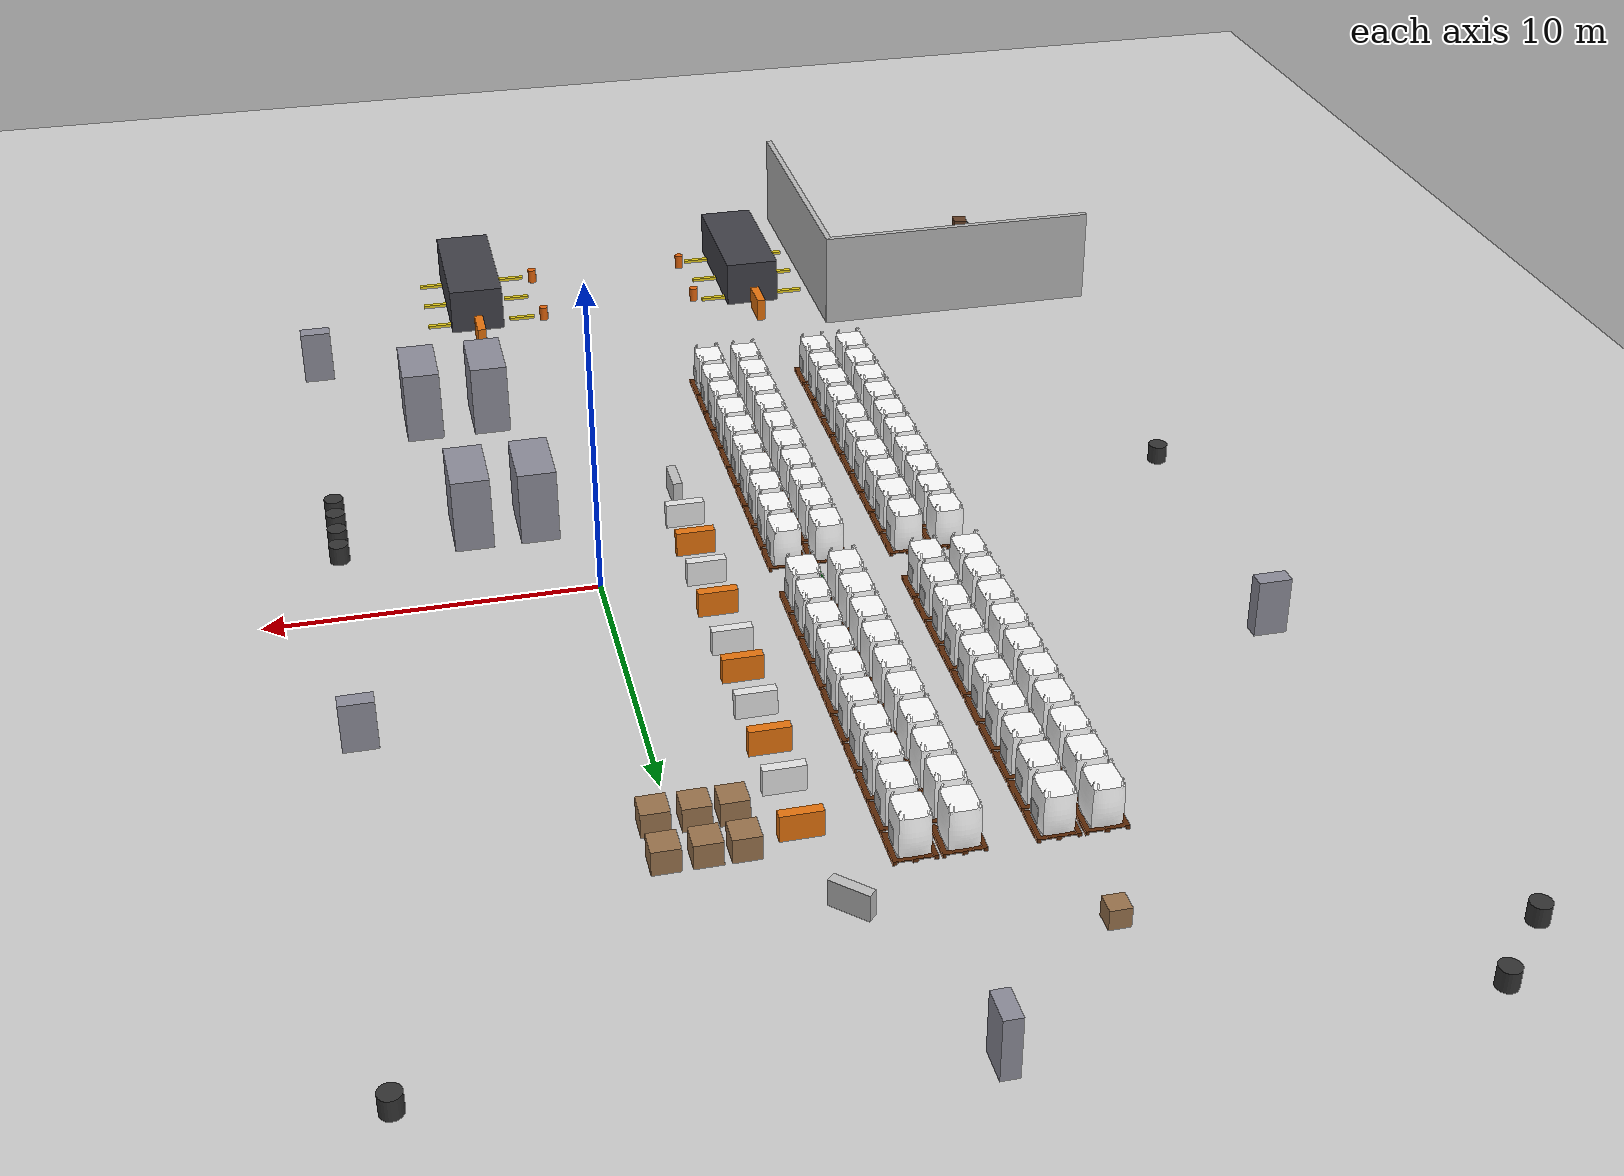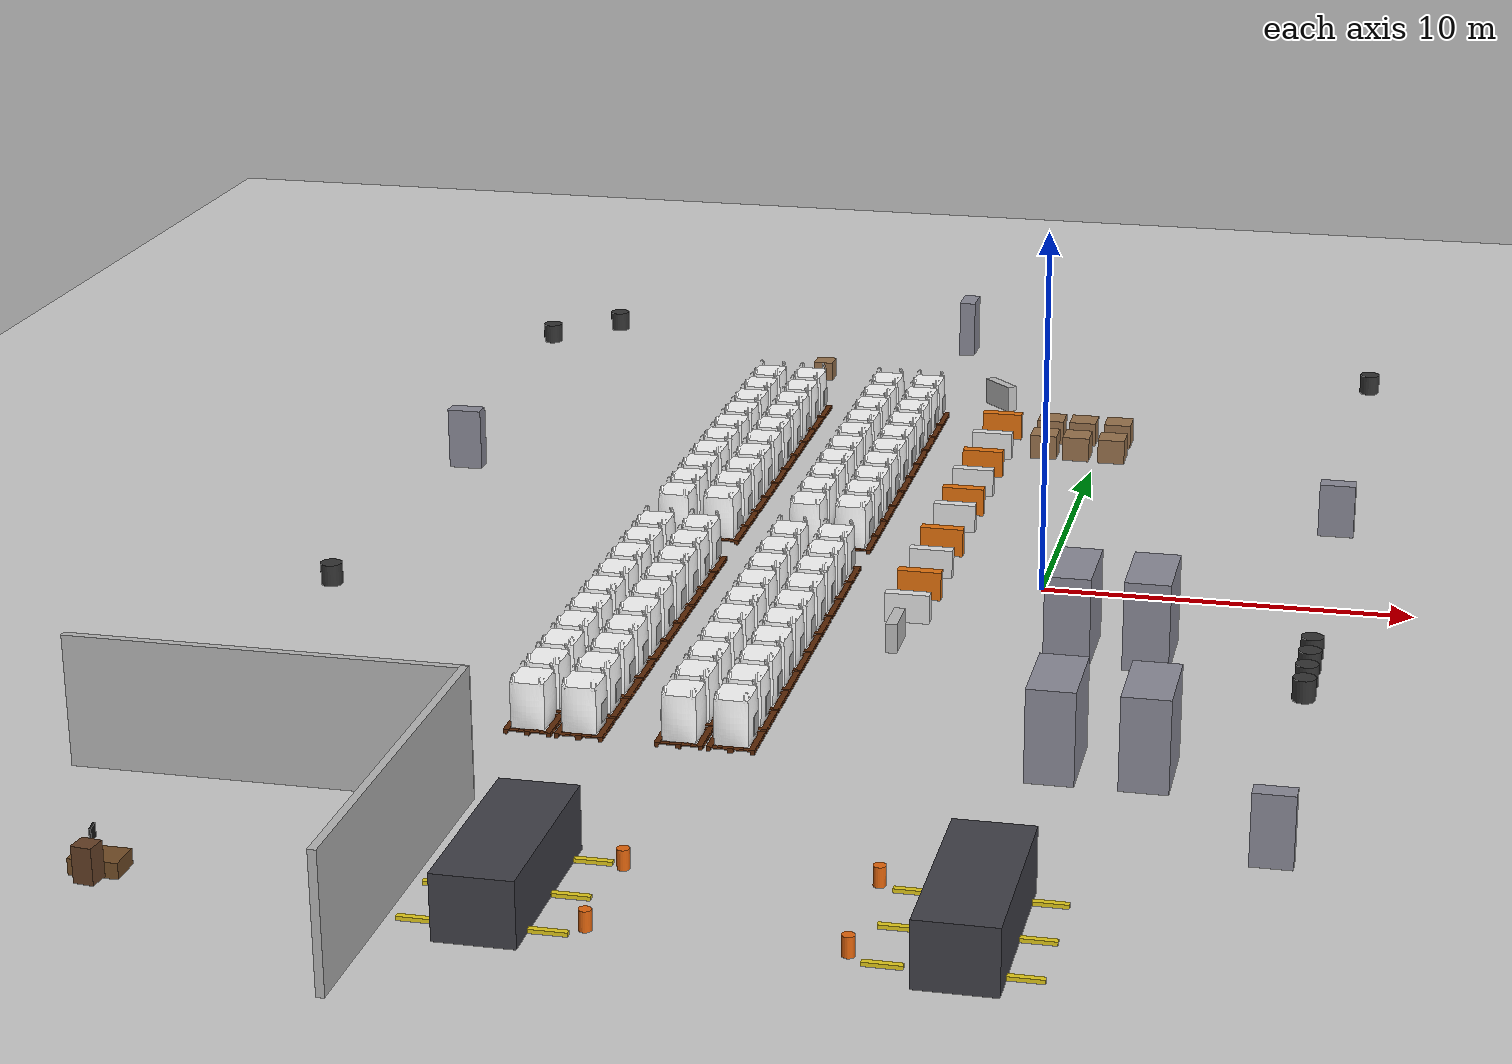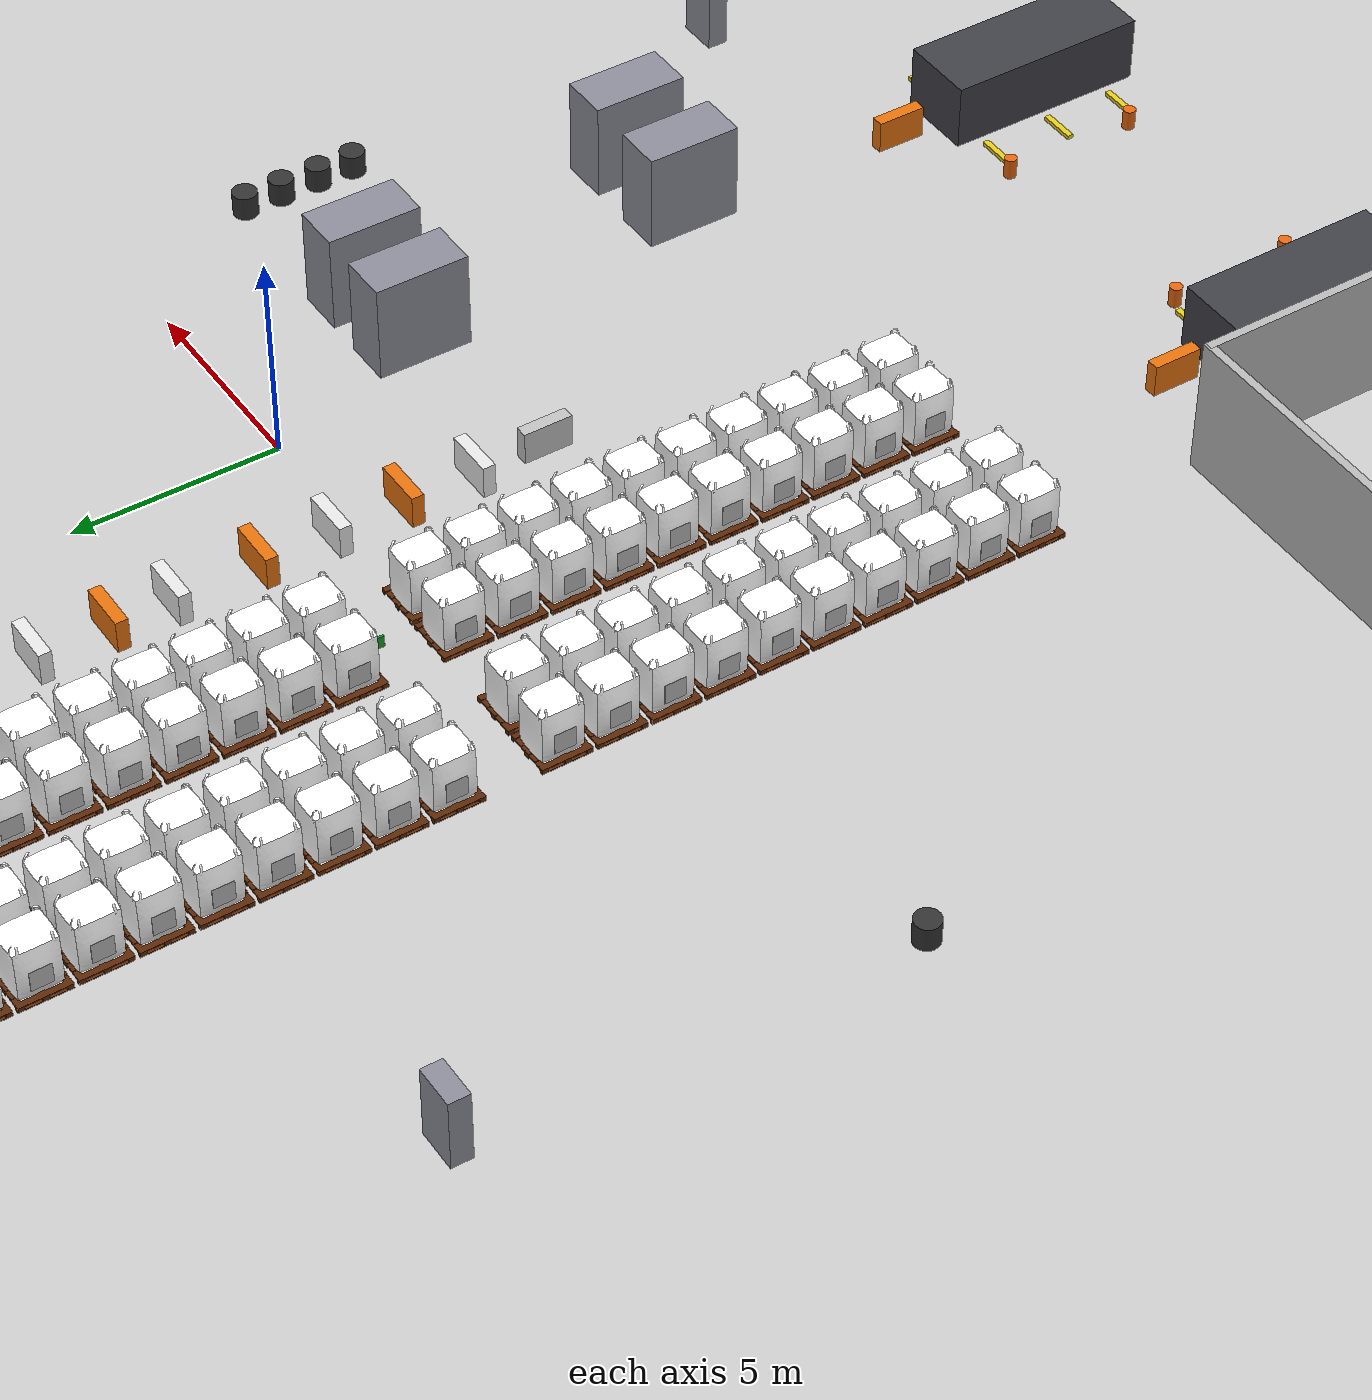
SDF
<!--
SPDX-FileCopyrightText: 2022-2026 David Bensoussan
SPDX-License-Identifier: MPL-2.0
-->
<sdf version="1.6">
 <world name="warehouse">
  <physics name="1ms" type="ignored">
   <max_step_size>0.001</max_step_size>
   <real_time_factor>1.0</real_time_factor>
  </physics>
  <plugin filename="gz-sim-physics-system" name="gz::sim::systems::Physics"/>
  <plugin filename="gz-sim-sensors-system" name="gz::sim::systems::Sensors">
   <render_engine>ogre2</render_engine>
  </plugin>
  <plugin filename="gz-sim-imu-system" name="gz::sim::systems::Imu"/>
  <plugin filename="gz-sim-user-commands-system" name="gz::sim::systems::UserCommands"/>
  <plugin filename="gz-sim-scene-broadcaster-system" name="gz::sim::systems::SceneBroadcaster"/>
  <plugin filename="gz-sim-contact-system" name="gz::sim::systems::Contact"/>
  <model name="ground_plane">
   <static>true</static>
   <link name="link">
    <collision name="collision">
     <geometry><plane><normal>0 0 1</normal><size>100 100</size></plane></geometry>
    </collision>
    <visual name="visual">
     <geometry><plane><normal>0 0 1</normal><size>100 100</size></plane></geometry>
     <material>
      <ambient>0.8 0.8 0.8 1</ambient>
      <diffuse>0.8 0.8 0.8 1</diffuse>
      <specular>0.8 0.8 0.8 1</specular>
     </material>
    </visual>
   </link>
  </model>
  <light type="directional" name="sun">
   <pose>0 0 10 0 0 0</pose>
   <diffuse>1 1 1 1</diffuse>
   <specular>0.5 0.5 0.5 1</specular>
   <attenuation>
    <range>1000</range>
    <constant>0.9</constant>
    <linear>0.01</linear>
    <quadratic>0.001</quadratic>
   </attenuation>
   <direction>-0.5 0.1 -0.9</direction>
  </light>
  <scene><ambient>0.4 0.4 0.4 1</ambient><background>0.7 0.7 0.7 1</background><shadows>false</shadows></scene>
  <model name="charging_dock">
   <pose>-6.5 1.37 0 0 0 0</pose>
   <include><uri>model://charging_dock</uri></include>
  </model>
  <model name="europallet_bag_1_1">
   <static>1</static>
   <pose>-9.5 -0.2 0 0 0 0</pose>
   <include><uri>model://europallet</uri></include>
   <include><uri>model://bag</uri></include>
  </model>
  <model name="europallet_bag_q_1_1">
   <static>1</static>
   <pose>-8.998293 -0.2 0.328453 0 0 0</pose>
   <include><uri>model://qrcode_0001</uri></include>
  </model>
  <model name="europallet_bag_1_2">
   <static>1</static>
   <pose>-9.5 -1.5 0 0 0 0</pose>
   <include><uri>model://europallet</uri></include>
   <include><uri>model://bag</uri></include>
  </model>
  <model name="europallet_bag_q_1_2">
   <static>1</static>
   <pose>-8.998293 -1.5 0.328453 0 0 0</pose>
   <include><uri>model://qrcode_0001</uri></include>
  </model>
  <model name="europallet_bag_1_3">
   <static>1</static>
   <pose>-9.5 -2.8 0 0 0 0</pose>
   <include><uri>model://europallet</uri></include>
   <include><uri>model://bag</uri></include>
  </model>
  <model name="europallet_bag_q_1_3">
   <static>1</static>
   <pose>-8.998293 -2.8 0.328453 0 0 0</pose>
   <include><uri>model://qrcode_0001</uri></include>
  </model>
  <model name="europallet_bag_1_4">
   <static>1</static>
   <pose>-9.5 -4.1 0 0 0 0</pose>
   <include><uri>model://europallet</uri></include>
   <include><uri>model://bag</uri></include>
  </model>
  <model name="europallet_bag_q_1_4">
   <static>1</static>
   <pose>-8.998293 -4.1 0.328453 0 0 0</pose>
   <include><uri>model://qrcode_0001</uri></include>
  </model>
  <model name="europallet_bag_1_5">
   <static>1</static>
   <pose>-9.5 -5.4 0 0 0 0</pose>
   <include><uri>model://europallet</uri></include>
   <include><uri>model://bag</uri></include>
  </model>
  <model name="europallet_bag_q_1_5">
   <static>1</static>
   <pose>-8.998293 -5.4 0.328453 0 0 0</pose>
   <include><uri>model://qrcode_0001</uri></include>
  </model>
  <model name="europallet_bag_1_6">
   <static>1</static>
   <pose>-9.5 -6.7 0 0 0 0</pose>
   <include><uri>model://europallet</uri></include>
   <include><uri>model://bag</uri></include>
  </model>
  <model name="europallet_bag_q_1_6">
   <static>1</static>
   <pose>-8.998293 -6.7 0.328453 0 0 0</pose>
   <include><uri>model://qrcode_0001</uri></include>
  </model>
  <model name="europallet_bag_1_7">
   <static>1</static>
   <pose>-9.5 -8 0 0 0 0</pose>
   <include><uri>model://europallet</uri></include>
   <include><uri>model://bag</uri></include>
  </model>
  <model name="europallet_bag_q_1_7">
   <static>1</static>
   <pose>-8.998293 -8 0.328453 0 0 0</pose>
   <include><uri>model://qrcode_0001</uri></include>
  </model>
  <model name="europallet_bag_1_8">
   <static>1</static>
   <pose>-9.5 -9.3 0 0 0 0</pose>
   <include><uri>model://europallet</uri></include>
   <include><uri>model://bag</uri></include>
  </model>
  <model name="europallet_bag_q_1_8">
   <static>1</static>
   <pose>-8.998293 -9.3 0.328453 0 0 0</pose>
   <include><uri>model://qrcode_0001</uri></include>
  </model>
  <model name="europallet_bag_1_9">
   <static>1</static>
   <pose>-9.5 -10.6 0 0 0 0</pose>
   <include><uri>model://europallet</uri></include>
   <include><uri>model://bag</uri></include>
  </model>
  <model name="europallet_bag_q_1_9">
   <static>1</static>
   <pose>-8.998293 -10.6 0.328453 0 0 0</pose>
   <include><uri>model://qrcode_0001</uri></include>
  </model>
  <model name="europallet_bag_1_10">
   <static>1</static>
   <pose>-9.5 -11.9 0 0 0 0</pose>
   <include><uri>model://europallet</uri></include>
   <include><uri>model://bag</uri></include>
  </model>
  <model name="europallet_bag_q_1_10">
   <static>1</static>
   <pose>-8.998293 -11.9 0.328453 0 0 0</pose>
   <include><uri>model://qrcode_0001</uri></include>
  </model>
  <model name="europallet_bag_2_1">
   <static>1</static>
   <pose>-10.8 -0.2 0 0 0 0</pose>
   <include><uri>model://europallet</uri></include>
   <include><uri>model://bag</uri></include>
  </model>
  <model name="europallet_bag_q_2_1">
   <static>1</static>
   <pose>-11.307849 -0.2 0.328453 0 0 3.141593</pose>
   <include><uri>model://qrcode_0002</uri></include>
  </model>
  <model name="europallet_bag_2_2">
   <static>1</static>
   <pose>-10.8 -1.5 0 0 0 0</pose>
   <include><uri>model://europallet</uri></include>
   <include><uri>model://bag</uri></include>
  </model>
  <model name="europallet_bag_q_2_2">
   <static>1</static>
   <pose>-11.307849 -1.5 0.328453 0 0 3.141593</pose>
   <include><uri>model://qrcode_0002</uri></include>
  </model>
  <model name="europallet_bag_2_3">
   <static>1</static>
   <pose>-10.8 -2.8 0 0 0 0</pose>
   <include><uri>model://europallet</uri></include>
   <include><uri>model://bag</uri></include>
  </model>
  <model name="europallet_bag_q_2_3">
   <static>1</static>
   <pose>-11.307849 -2.8 0.328453 0 0 3.141593</pose>
   <include><uri>model://qrcode_0002</uri></include>
  </model>
  <model name="europallet_bag_2_4">
   <static>1</static>
   <pose>-10.8 -4.1 0 0 0 0</pose>
   <include><uri>model://europallet</uri></include>
   <include><uri>model://bag</uri></include>
  </model>
  <model name="europallet_bag_q_2_4">
   <static>1</static>
   <pose>-11.307849 -4.1 0.328453 0 0 3.141593</pose>
   <include><uri>model://qrcode_0002</uri></include>
  </model>
  <model name="europallet_bag_2_5">
   <static>1</static>
   <pose>-10.8 -5.4 0 0 0 0</pose>
   <include><uri>model://europallet</uri></include>
   <include><uri>model://bag</uri></include>
  </model>
  <model name="europallet_bag_q_2_5">
   <static>1</static>
   <pose>-11.307849 -5.4 0.328453 0 0 3.141593</pose>
   <include><uri>model://qrcode_0002</uri></include>
  </model>
  <model name="europallet_bag_2_6">
   <static>1</static>
   <pose>-10.8 -6.7 0 0 0 0</pose>
   <include><uri>model://europallet</uri></include>
   <include><uri>model://bag</uri></include>
  </model>
  <model name="europallet_bag_q_2_6">
   <static>1</static>
   <pose>-11.307849 -6.7 0.328453 0 0 3.141593</pose>
   <include><uri>model://qrcode_0002</uri></include>
  </model>
  <model name="europallet_bag_2_7">
   <static>1</static>
   <pose>-10.8 -8 0 0 0 0</pose>
   <include><uri>model://europallet</uri></include>
   <include><uri>model://bag</uri></include>
  </model>
  <model name="europallet_bag_q_2_7">
   <static>1</static>
   <pose>-11.307849 -8 0.328453 0 0 3.141593</pose>
   <include><uri>model://qrcode_0002</uri></include>
  </model>
  <model name="europallet_bag_2_8">
   <static>1</static>
   <pose>-10.8 -9.3 0 0 0 0</pose>
   <include><uri>model://europallet</uri></include>
   <include><uri>model://bag</uri></include>
  </model>
  <model name="europallet_bag_q_2_8">
   <static>1</static>
   <pose>-11.307849 -9.3 0.328453 0 0 3.141593</pose>
   <include><uri>model://qrcode_0002</uri></include>
  </model>
  <model name="europallet_bag_2_9">
   <static>1</static>
   <pose>-10.8 -10.6 0 0 0 0</pose>
   <include><uri>model://europallet</uri></include>
   <include><uri>model://bag</uri></include>
  </model>
  <model name="europallet_bag_q_2_9">
   <static>1</static>
   <pose>-11.307849 -10.6 0.328453 0 0 3.141593</pose>
   <include><uri>model://qrcode_0002</uri></include>
  </model>
  <model name="europallet_bag_2_10">
   <static>1</static>
   <pose>-10.8 -11.9 0 0 0 0</pose>
   <include><uri>model://europallet</uri></include>
   <include><uri>model://bag</uri></include>
  </model>
  <model name="europallet_bag_q_2_10">
   <static>1</static>
   <pose>-11.307849 -11.9 0.328453 0 0 3.141593</pose>
   <include><uri>model://qrcode_0002</uri></include>
  </model>
  <model name="europallet_bag_3_1">
   <static>1</static>
   <pose>-9.5 2.3 0 0 0 0</pose>
   <include><uri>model://europallet</uri></include>
   <include><uri>model://bag</uri></include>
  </model>
  <model name="europallet_bag_q_3_1">
   <static>1</static>
   <pose>-8.998293 2.3 0.328453 0 0 0</pose>
   <include><uri>model://qrcode_0003</uri></include>
  </model>
  <model name="europallet_bag_3_2">
   <static>1</static>
   <pose>-9.5 3.6 0 0 0 0</pose>
   <include><uri>model://europallet</uri></include>
   <include><uri>model://bag</uri></include>
  </model>
  <model name="europallet_bag_q_3_2">
   <static>1</static>
   <pose>-8.998293 3.6 0.328453 0 0 0</pose>
   <include><uri>model://qrcode_0003</uri></include>
  </model>
  <model name="europallet_bag_3_3">
   <static>1</static>
   <pose>-9.5 4.9 0 0 0 0</pose>
   <include><uri>model://europallet</uri></include>
   <include><uri>model://bag</uri></include>
  </model>
  <model name="europallet_bag_q_3_3">
   <static>1</static>
   <pose>-8.998293 4.9 0.328453 0 0 0</pose>
   <include><uri>model://qrcode_0003</uri></include>
  </model>
  <model name="europallet_bag_3_4">
   <static>1</static>
   <pose>-9.5 6.2 0 0 0 0</pose>
   <include><uri>model://europallet</uri></include>
   <include><uri>model://bag</uri></include>
  </model>
  <model name="europallet_bag_q_3_4">
   <static>1</static>
   <pose>-8.998293 6.2 0.328453 0 0 0</pose>
   <include><uri>model://qrcode_0003</uri></include>
  </model>
  <model name="europallet_bag_3_5">
   <static>1</static>
   <pose>-9.5 7.5 0 0 0 0</pose>
   <include><uri>model://europallet</uri></include>
   <include><uri>model://bag</uri></include>
  </model>
  <model name="europallet_bag_q_3_5">
   <static>1</static>
   <pose>-8.998293 7.5 0.328453 0 0 0</pose>
   <include><uri>model://qrcode_0003</uri></include>
  </model>
  <model name="europallet_bag_3_6">
   <static>1</static>
   <pose>-9.5 8.8 0 0 0 0</pose>
   <include><uri>model://europallet</uri></include>
   <include><uri>model://bag</uri></include>
  </model>
  <model name="europallet_bag_q_3_6">
   <static>1</static>
   <pose>-8.998293 8.8 0.328453 0 0 0</pose>
   <include><uri>model://qrcode_0003</uri></include>
  </model>
  <model name="europallet_bag_3_7">
   <static>1</static>
   <pose>-9.5 10.1 0 0 0 0</pose>
   <include><uri>model://europallet</uri></include>
   <include><uri>model://bag</uri></include>
  </model>
  <model name="europallet_bag_q_3_7">
   <static>1</static>
   <pose>-8.998293 10.1 0.328453 0 0 0</pose>
   <include><uri>model://qrcode_0003</uri></include>
  </model>
  <model name="europallet_bag_3_8">
   <static>1</static>
   <pose>-9.5 11.4 0 0 0 0</pose>
   <include><uri>model://europallet</uri></include>
   <include><uri>model://bag</uri></include>
  </model>
  <model name="europallet_bag_q_3_8">
   <static>1</static>
   <pose>-8.998293 11.4 0.328453 0 0 0</pose>
   <include><uri>model://qrcode_0003</uri></include>
  </model>
  <model name="europallet_bag_3_9">
   <static>1</static>
   <pose>-9.5 12.7 0 0 0 0</pose>
   <include><uri>model://europallet</uri></include>
   <include><uri>model://bag</uri></include>
  </model>
  <model name="europallet_bag_q_3_9">
   <static>1</static>
   <pose>-8.998293 12.7 0.328453 0 0 0</pose>
   <include><uri>model://qrcode_0003</uri></include>
  </model>
  <model name="europallet_bag_3_10">
   <static>1</static>
   <pose>-9.5 14 0 0 0 0</pose>
   <include><uri>model://europallet</uri></include>
   <include><uri>model://bag</uri></include>
  </model>
  <model name="europallet_bag_q_3_10">
   <static>1</static>
   <pose>-8.998293 14 0.328453 0 0 0</pose>
   <include><uri>model://qrcode_0003</uri></include>
  </model>
  <model name="europallet_bag_4_1">
   <static>1</static>
   <pose>-10.8 2.3 0 0 0 0</pose>
   <include><uri>model://europallet</uri></include>
   <include><uri>model://bag</uri></include>
  </model>
  <model name="europallet_bag_q_4_1">
   <static>1</static>
   <pose>-11.307849 2.3 0.328453 0 0 3.141593</pose>
   <include><uri>model://qrcode_0004</uri></include>
  </model>
  <model name="europallet_bag_4_2">
   <static>1</static>
   <pose>-10.8 3.6 0 0 0 0</pose>
   <include><uri>model://europallet</uri></include>
   <include><uri>model://bag</uri></include>
  </model>
  <model name="europallet_bag_q_4_2">
   <static>1</static>
   <pose>-11.307849 3.6 0.328453 0 0 3.141593</pose>
   <include><uri>model://qrcode_0004</uri></include>
  </model>
  <model name="europallet_bag_4_3">
   <static>1</static>
   <pose>-10.8 4.9 0 0 0 0</pose>
   <include><uri>model://europallet</uri></include>
   <include><uri>model://bag</uri></include>
  </model>
  <model name="europallet_bag_q_4_3">
   <static>1</static>
   <pose>-11.307849 4.9 0.328453 0 0 3.141593</pose>
   <include><uri>model://qrcode_0004</uri></include>
  </model>
  <model name="europallet_bag_4_4">
   <static>1</static>
   <pose>-10.8 6.2 0 0 0 0</pose>
   <include><uri>model://europallet</uri></include>
   <include><uri>model://bag</uri></include>
  </model>
  <model name="europallet_bag_q_4_4">
   <static>1</static>
   <pose>-11.307849 6.2 0.328453 0 0 3.141593</pose>
   <include><uri>model://qrcode_0004</uri></include>
  </model>
  <model name="europallet_bag_4_5">
   <static>1</static>
   <pose>-10.8 7.5 0 0 0 0</pose>
   <include><uri>model://europallet</uri></include>
   <include><uri>model://bag</uri></include>
  </model>
  <model name="europallet_bag_q_4_5">
   <static>1</static>
   <pose>-11.307849 7.5 0.328453 0 0 3.141593</pose>
   <include><uri>model://qrcode_0004</uri></include>
  </model>
  <model name="europallet_bag_4_6">
   <static>1</static>
   <pose>-10.8 8.8 0 0 0 0</pose>
   <include><uri>model://europallet</uri></include>
   <include><uri>model://bag</uri></include>
  </model>
  <model name="europallet_bag_q_4_6">
   <static>1</static>
   <pose>-11.307849 8.8 0.328453 0 0 3.141593</pose>
   <include><uri>model://qrcode_0004</uri></include>
  </model>
  <model name="europallet_bag_4_7">
   <static>1</static>
   <pose>-10.8 10.1 0 0 0 0</pose>
   <include><uri>model://europallet</uri></include>
   <include><uri>model://bag</uri></include>
  </model>
  <model name="europallet_bag_q_4_7">
   <static>1</static>
   <pose>-11.307849 10.1 0.328453 0 0 3.141593</pose>
   <include><uri>model://qrcode_0004</uri></include>
  </model>
  <model name="europallet_bag_4_8">
   <static>1</static>
   <pose>-10.8 11.4 0 0 0 0</pose>
   <include><uri>model://europallet</uri></include>
   <include><uri>model://bag</uri></include>
  </model>
  <model name="europallet_bag_q_4_8">
   <static>1</static>
   <pose>-11.307849 11.4 0.328453 0 0 3.141593</pose>
   <include><uri>model://qrcode_0004</uri></include>
  </model>
  <model name="europallet_bag_4_9">
   <static>1</static>
   <pose>-10.8 12.7 0 0 0 0</pose>
   <include><uri>model://europallet</uri></include>
   <include><uri>model://bag</uri></include>
  </model>
  <model name="europallet_bag_q_4_9">
   <static>1</static>
   <pose>-11.307849 12.7 0.328453 0 0 3.141593</pose>
   <include><uri>model://qrcode_0004</uri></include>
  </model>
  <model name="europallet_bag_4_10">
   <static>1</static>
   <pose>-10.8 14 0 0 0 0</pose>
   <include><uri>model://europallet</uri></include>
   <include><uri>model://bag</uri></include>
  </model>
  <model name="europallet_bag_q_4_10">
   <static>1</static>
   <pose>-11.307849 14 0.328453 0 0 3.141593</pose>
   <include><uri>model://qrcode_0004</uri></include>
  </model>
  <model name="europallet_bag_5_1">
   <static>1</static>
   <pose>-7 -0.2 0 0 0 3.141593</pose>
   <include><uri>model://europallet</uri></include>
   <include><uri>model://bag</uri><pose>0 0 0 0 0 -3.141593</pose></include>
  </model>
  <model name="europallet_bag_q_5_1">
   <static>1</static>
   <pose>-7.503675 -0.2 0.328453 0 0 3.141593</pose>
   <include><uri>model://qrcode_0005</uri></include>
  </model>
  <model name="europallet_bag_5_2">
   <static>1</static>
   <pose>-7 -1.5 0 0 0 0</pose>
   <include><uri>model://europallet</uri></include>
   <include><uri>model://bag</uri></include>
  </model>
  <model name="europallet_bag_q_5_2">
   <static>1</static>
   <pose>-7.503675 -1.5 0.328453 0 0 3.141593</pose>
   <include><uri>model://qrcode_0005</uri></include>
  </model>
  <model name="europallet_bag_5_3">
   <static>1</static>
   <pose>-7 -2.8 0 0 0 0</pose>
   <include><uri>model://europallet</uri></include>
   <include><uri>model://bag</uri></include>
  </model>
  <model name="europallet_bag_q_5_3">
   <static>1</static>
   <pose>-7.503675 -2.8 0.328453 0 0 3.141593</pose>
   <include><uri>model://qrcode_0005</uri></include>
  </model>
  <model name="europallet_bag_5_4">
   <static>1</static>
   <pose>-7 -4.1 0 0 0 0</pose>
   <include><uri>model://europallet</uri></include>
   <include><uri>model://bag</uri></include>
  </model>
  <model name="europallet_bag_q_5_4">
   <static>1</static>
   <pose>-7.503675 -4.1 0.328453 0 0 3.141593</pose>
   <include><uri>model://qrcode_0005</uri></include>
  </model>
  <model name="europallet_bag_5_5">
   <static>1</static>
   <pose>-7 -5.4 0 0 0 0</pose>
   <include><uri>model://europallet</uri></include>
   <include><uri>model://bag</uri></include>
  </model>
  <model name="europallet_bag_q_5_5">
   <static>1</static>
   <pose>-7.503675 -5.4 0.328453 0 0 3.141593</pose>
   <include><uri>model://qrcode_0005</uri></include>
  </model>
  <model name="europallet_bag_5_6">
   <static>1</static>
   <pose>-7 -6.7 0 0 0 0</pose>
   <include><uri>model://europallet</uri></include>
   <include><uri>model://bag</uri></include>
  </model>
  <model name="europallet_bag_q_5_6">
   <static>1</static>
   <pose>-7.503675 -6.7 0.328453 0 0 3.141593</pose>
   <include><uri>model://qrcode_0005</uri></include>
  </model>
  <model name="europallet_bag_5_7">
   <static>1</static>
   <pose>-7 -8 0 0 0 0</pose>
   <include><uri>model://europallet</uri></include>
   <include><uri>model://bag</uri></include>
  </model>
  <model name="europallet_bag_q_5_7">
   <static>1</static>
   <pose>-7.503675 -8 0.328453 0 0 3.141593</pose>
   <include><uri>model://qrcode_0005</uri></include>
  </model>
  <model name="europallet_bag_5_8">
   <static>1</static>
   <pose>-7 -9.3 0 0 0 0</pose>
   <include><uri>model://europallet</uri></include>
   <include><uri>model://bag</uri></include>
  </model>
  <model name="europallet_bag_q_5_8">
   <static>1</static>
   <pose>-7.503675 -9.3 0.328453 0 0 3.141593</pose>
   <include><uri>model://qrcode_0005</uri></include>
  </model>
  <model name="europallet_bag_5_9">
   <static>1</static>
   <pose>-7 -10.6 0 0 0 0</pose>
   <include><uri>model://europallet</uri></include>
   <include><uri>model://bag</uri></include>
  </model>
  <model name="europallet_bag_q_5_9">
   <static>1</static>
   <pose>-7.503675 -10.6 0.328453 0 0 3.141593</pose>
   <include><uri>model://qrcode_0005</uri></include>
  </model>
  <model name="europallet_bag_5_10">
   <static>1</static>
   <pose>-7 -11.9 0 0 0 0</pose>
   <include><uri>model://europallet</uri></include>
   <include><uri>model://bag</uri></include>
  </model>
  <model name="europallet_bag_q_5_10">
   <static>1</static>
   <pose>-7.503675 -11.9 0.328453 0 0 3.141593</pose>
   <include><uri>model://qrcode_0005</uri></include>
  </model>
  <model name="europallet_bag_6_1">
   <static>1</static>
   <pose>-5.7 -0.2 0 0 0 0</pose>
   <include><uri>model://europallet</uri></include>
   <include><uri>model://bag</uri></include>
  </model>
  <model name="europallet_bag_q_6_1">
   <static>1</static>
   <pose>-5.197858 -0.2 0.328453 0 0 0</pose>
   <include><uri>model://qrcode_0006</uri></include>
  </model>
  <model name="europallet_bag_6_2">
   <static>1</static>
   <pose>-5.7 -1.5 0 0 0 0</pose>
   <include><uri>model://europallet</uri></include>
   <include><uri>model://bag</uri></include>
  </model>
  <model name="europallet_bag_q_6_2">
   <static>1</static>
   <pose>-5.197858 -1.5 0.328453 0 0 0</pose>
   <include><uri>model://qrcode_0006</uri></include>
  </model>
  <model name="europallet_bag_6_3">
   <static>1</static>
   <pose>-5.7 -2.8 0 0 0 0</pose>
   <include><uri>model://europallet</uri></include>
   <include><uri>model://bag</uri></include>
  </model>
  <model name="europallet_bag_q_6_3">
   <static>1</static>
   <pose>-5.197858 -2.8 0.328453 0 0 0</pose>
   <include><uri>model://qrcode_0006</uri></include>
  </model>
  <model name="europallet_bag_6_4">
   <static>1</static>
   <pose>-5.7 -4.1 0 0 0 0</pose>
   <include><uri>model://europallet</uri></include>
   <include><uri>model://bag</uri></include>
  </model>
  <model name="europallet_bag_q_6_4">
   <static>1</static>
   <pose>-5.197858 -4.1 0.328453 0 0 0</pose>
   <include><uri>model://qrcode_0006</uri></include>
  </model>
  <model name="europallet_bag_6_5">
   <static>1</static>
   <pose>-5.7 -5.4 0 0 0 0</pose>
   <include><uri>model://europallet</uri></include>
   <include><uri>model://bag</uri></include>
  </model>
  <model name="europallet_bag_q_6_5">
   <static>1</static>
   <pose>-5.197858 -5.4 0.328453 0 0 0</pose>
   <include><uri>model://qrcode_0006</uri></include>
  </model>
  <model name="europallet_bag_6_6">
   <static>1</static>
   <pose>-5.7 -6.7 0 0 0 0</pose>
   <include><uri>model://europallet</uri></include>
   <include><uri>model://bag</uri></include>
  </model>
  <model name="europallet_bag_q_6_6">
   <static>1</static>
   <pose>-5.197858 -6.7 0.328453 0 0 0</pose>
   <include><uri>model://qrcode_0006</uri></include>
  </model>
  <model name="europallet_bag_6_7">
   <static>1</static>
   <pose>-5.7 -8 0 0 0 0</pose>
   <include><uri>model://europallet</uri></include>
   <include><uri>model://bag</uri></include>
  </model>
  <model name="europallet_bag_q_6_7">
   <static>1</static>
   <pose>-5.197858 -8 0.328453 0 0 0</pose>
   <include><uri>model://qrcode_0006</uri></include>
  </model>
  <model name="europallet_bag_6_8">
   <static>1</static>
   <pose>-5.7 -9.3 0 0 0 0</pose>
   <include><uri>model://europallet</uri></include>
   <include><uri>model://bag</uri></include>
  </model>
  <model name="europallet_bag_q_6_8">
   <static>1</static>
   <pose>-5.197858 -9.3 0.328453 0 0 0</pose>
   <include><uri>model://qrcode_0006</uri></include>
  </model>
  <model name="europallet_bag_6_9">
   <static>1</static>
   <pose>-5.7 -10.6 0 0 0 0</pose>
   <include><uri>model://europallet</uri></include>
   <include><uri>model://bag</uri></include>
  </model>
  <model name="europallet_bag_q_6_9">
   <static>1</static>
   <pose>-5.197858 -10.6 0.328453 0 0 0</pose>
   <include><uri>model://qrcode_0006</uri></include>
  </model>
  <model name="europallet_bag_6_10">
   <static>1</static>
   <pose>-5.7 -11.9 0 0 0 0</pose>
   <include><uri>model://europallet</uri></include>
   <include><uri>model://bag</uri></include>
  </model>
  <model name="europallet_bag_q_6_10">
   <static>1</static>
   <pose>-5.197858 -11.9 0.328453 0 0 0</pose>
   <include><uri>model://qrcode_0006</uri></include>
  </model>
  <model name="europallet_bag_7_1">
   <static>1</static>
   <pose>-7 2.3 0 0 0 0</pose>
   <include><uri>model://europallet</uri></include>
   <include><uri>model://bag</uri></include>
  </model>
  <model name="europallet_bag_q_7_1">
   <static>1</static>
   <pose>-7.503675 2.3 0.328453 0 0 3.141593</pose>
   <include><uri>model://qrcode_0007</uri></include>
  </model>
  <model name="europallet_bag_7_2">
   <static>1</static>
   <pose>-7 3.6 0 0 0 0</pose>
   <include><uri>model://europallet</uri></include>
   <include><uri>model://bag</uri></include>
  </model>
  <model name="europallet_bag_q_7_2">
   <static>1</static>
   <pose>-7.503675 3.6 0.328453 0 0 3.141593</pose>
   <include><uri>model://qrcode_0007</uri></include>
  </model>
  <model name="europallet_bag_7_3">
   <static>1</static>
   <pose>-7 4.9 0 0 0 0</pose>
   <include><uri>model://europallet</uri></include>
   <include><uri>model://bag</uri></include>
  </model>
  <model name="europallet_bag_q_7_3">
   <static>1</static>
   <pose>-7.503675 4.9 0.328453 0 0 3.141593</pose>
   <include><uri>model://qrcode_0007</uri></include>
  </model>
  <model name="europallet_bag_7_4">
   <static>1</static>
   <pose>-7 6.2 0 0 0 0</pose>
   <include><uri>model://europallet</uri></include>
   <include><uri>model://bag</uri></include>
  </model>
  <model name="europallet_bag_q_7_4">
   <static>1</static>
   <pose>-7.503675 6.2 0.328453 0 0 3.141593</pose>
   <include><uri>model://qrcode_0007</uri></include>
  </model>
  <model name="europallet_bag_7_5">
   <static>1</static>
   <pose>-7 7.5 0 0 0 0</pose>
   <include><uri>model://europallet</uri></include>
   <include><uri>model://bag</uri></include>
  </model>
  <model name="europallet_bag_q_7_5">
   <static>1</static>
   <pose>-7.503675 7.5 0.328453 0 0 3.141593</pose>
   <include><uri>model://qrcode_0007</uri></include>
  </model>
  <model name="europallet_bag_7_6">
   <static>1</static>
   <pose>-7 8.8 0 0 0 0</pose>
   <include><uri>model://europallet</uri></include>
   <include><uri>model://bag</uri></include>
  </model>
  <model name="europallet_bag_q_7_6">
   <static>1</static>
   <pose>-7.503675 8.8 0.328453 0 0 3.141593</pose>
   <include><uri>model://qrcode_0007</uri></include>
  </model>
  <model name="europallet_bag_7_7">
   <static>1</static>
   <pose>-7 10.1 0 0 0 0</pose>
   <include><uri>model://europallet</uri></include>
   <include><uri>model://bag</uri></include>
  </model>
  <model name="europallet_bag_q_7_7">
   <static>1</static>
   <pose>-7.503675 10.1 0.328453 0 0 3.141593</pose>
   <include><uri>model://qrcode_0007</uri></include>
  </model>
  <model name="europallet_bag_7_8">
   <static>1</static>
   <pose>-7 11.4 0 0 0 0</pose>
   <include><uri>model://europallet</uri></include>
   <include><uri>model://bag</uri></include>
  </model>
  <model name="europallet_bag_q_7_8">
   <static>1</static>
   <pose>-7.503675 11.4 0.328453 0 0 3.141593</pose>
   <include><uri>model://qrcode_0007</uri></include>
  </model>
  <model name="europallet_bag_7_9">
   <static>1</static>
   <pose>-7 12.7 0 0 0 0</pose>
   <include><uri>model://europallet</uri></include>
   <include><uri>model://bag</uri></include>
  </model>
  <model name="europallet_bag_q_7_9">
   <static>1</static>
   <pose>-7.503675 12.7 0.328453 0 0 3.141593</pose>
   <include><uri>model://qrcode_0007</uri></include>
  </model>
  <model name="europallet_bag_7_10">
   <static>1</static>
   <pose>-7 14 0 0 0 0</pose>
   <include><uri>model://europallet</uri></include>
   <include><uri>model://bag</uri></include>
  </model>
  <model name="europallet_bag_q_7_10">
   <static>1</static>
   <pose>-7.503675 14 0.328453 0 0 3.141593</pose>
   <include><uri>model://qrcode_0007</uri></include>
  </model>
  <model name="europallet_bag_8_1">
   <static>1</static>
   <pose>-5.7 2.3 0 0 0 0</pose>
   <include><uri>model://europallet</uri></include>
   <include><uri>model://bag</uri></include>
  </model>
  <model name="europallet_bag_q_8_1">
   <static>1</static>
   <pose>-5.197858 2.3 0.328453 0 0 0</pose>
   <include><uri>model://qrcode_0008</uri></include>
  </model>
  <model name="europallet_bag_8_2">
   <static>1</static>
   <pose>-5.7 3.6 0 0 0 0</pose>
   <include><uri>model://europallet</uri></include>
   <include><uri>model://bag</uri></include>
  </model>
  <model name="europallet_bag_q_8_2">
   <static>1</static>
   <pose>-5.197858 3.6 0.328453 0 0 0</pose>
   <include><uri>model://qrcode_0008</uri></include>
  </model>
  <model name="europallet_bag_8_3">
   <static>1</static>
   <pose>-5.7 4.9 0 0 0 0</pose>
   <include><uri>model://europallet</uri></include>
   <include><uri>model://bag</uri></include>
  </model>
  <model name="europallet_bag_q_8_3">
   <static>1</static>
   <pose>-5.197858 4.9 0.328453 0 0 0</pose>
   <include><uri>model://qrcode_0008</uri></include>
  </model>
  <model name="europallet_bag_8_4">
   <static>1</static>
   <pose>-5.7 6.2 0 0 0 0</pose>
   <include><uri>model://europallet</uri></include>
   <include><uri>model://bag</uri></include>
  </model>
  <model name="europallet_bag_q_8_4">
   <static>1</static>
   <pose>-5.197858 6.2 0.328453 0 0 0</pose>
   <include><uri>model://qrcode_0008</uri></include>
  </model>
  <model name="europallet_bag_8_5">
   <static>1</static>
   <pose>-5.7 7.5 0 0 0 0</pose>
   <include><uri>model://europallet</uri></include>
   <include><uri>model://bag</uri></include>
  </model>
  <model name="europallet_bag_q_8_5">
   <static>1</static>
   <pose>-5.197858 7.5 0.328453 0 0 0</pose>
   <include><uri>model://qrcode_0008</uri></include>
  </model>
  <model name="europallet_bag_8_6">
   <static>1</static>
   <pose>-5.7 8.8 0 0 0 0</pose>
   <include><uri>model://europallet</uri></include>
   <include><uri>model://bag</uri></include>
  </model>
  <model name="europallet_bag_q_8_6">
   <static>1</static>
   <pose>-5.197858 8.8 0.328453 0 0 0</pose>
   <include><uri>model://qrcode_0008</uri></include>
  </model>
  <model name="europallet_bag_8_7">
   <static>1</static>
   <pose>-5.7 10.1 0 0 0 0</pose>
   <include><uri>model://europallet</uri></include>
   <include><uri>model://bag</uri></include>
  </model>
  <model name="europallet_bag_q_8_7">
   <static>1</static>
   <pose>-5.197858 10.1 0.328453 0 0 0</pose>
   <include><uri>model://qrcode_0008</uri></include>
  </model>
  <model name="europallet_bag_8_8">
   <static>1</static>
   <pose>-5.7 11.4 0 0 0 0</pose>
   <include><uri>model://europallet</uri></include>
   <include><uri>model://bag</uri></include>
  </model>
  <model name="europallet_bag_q_8_8">
   <static>1</static>
   <pose>-5.197858 11.4 0.328453 0 0 0</pose>
   <include><uri>model://qrcode_0008</uri></include>
  </model>
  <model name="europallet_bag_8_9">
   <static>1</static>
   <pose>-5.7 12.7 0 0 0 0</pose>
   <include><uri>model://europallet</uri></include>
   <include><uri>model://bag</uri></include>
  </model>
  <model name="europallet_bag_q_8_9">
   <static>1</static>
   <pose>-5.197858 12.7 0.328453 0 0 0</pose>
   <include><uri>model://qrcode_0008</uri></include>
  </model>
  <model name="europallet_bag_8_10">
   <static>1</static>
   <pose>-5.7 14 0 0 0 0</pose>
   <include><uri>model://europallet</uri></include>
   <include><uri>model://bag</uri></include>
  </model>
  <model name="europallet_bag_q_8_10">
   <static>1</static>
   <pose>-5.197858 14 0.328453 0 0 0</pose>
   <include><uri>model://qrcode_0008</uri></include>
  </model>
  <model name="drc_practice_angled_barrier_135_1">
   <static>1</static>
   <pose>-3.679527 15.964084 0 0 0 2.361593</pose>
   <include><uri>model://drc_practice_angled_barrier_135</uri></include>
  </model>
  <model name="drc_practice_angled_barrier_135_2">
   <static>1</static>
   <pose>-3.135057 -4.786276 0 0 0 -1.565401</pose>
   <include><uri>model://drc_practice_angled_barrier_135</uri></include>
  </model>
  <model name="drc_practice_orange_jersey_barrier_1">
   <static>1</static>
   <pose>-3.135230 12.8709 0 0 0 0</pose>
   <include><uri>model://drc_practice_orange_jersey_barrier</uri></include>
  </model>
  <model name="drc_practice_white_jersey_barrier_2">
   <static>1</static>
   <pose>-3.135230 10.9256 0 0 0 0</pose>
   <include><uri>model://drc_practice_white_jersey_barrier</uri></include>
  </model>
  <model name="drc_practice_orange_jersey_barrier_2">
   <static>1</static>
   <pose>-3.135230 9.1803 0 0 0 0</pose>
   <include><uri>model://drc_practice_orange_jersey_barrier</uri></include>
  </model>
  <model name="drc_practice_white_jersey_barrier_3">
   <static>1</static>
   <pose>-3.135230 7.435 0 0 0 0</pose>
   <include><uri>model://drc_practice_white_jersey_barrier</uri></include>
  </model>
  <model name="drc_practice_orange_jersey_barrier_3">
   <static>1</static>
   <pose>-3.135230 5.6897 0 0 0 0</pose>
   <include><uri>model://drc_practice_orange_jersey_barrier</uri></include>
  </model>
  <model name="drc_practice_white_jersey_barrier_4">
   <static>1</static>
   <pose>-3.135230 4.2444 0 0 0 0</pose>
   <include><uri>model://drc_practice_white_jersey_barrier</uri></include>
  </model>
  <model name="drc_practice_orange_jersey_barrier_4">
   <static>1</static>
   <pose>-3.135230 2.19910 0 0 0 0</pose>
   <include><uri>model://drc_practice_orange_jersey_barrier</uri></include>
  </model>
  <model name="drc_practice_white_jersey_barrier_5">
   <static>1</static>
   <pose>-3.135230 0.45380 0 0 0 0</pose>
   <include><uri>model://drc_practice_white_jersey_barrier</uri></include>
  </model>
  <model name="drc_practice_orange_jersey_barrier_5">
   <static>1</static>
   <pose>-3.135230 -1.29149 0 0 0 0</pose>
   <include><uri>model://drc_practice_orange_jersey_barrier</uri></include>
  </model>
  <model name="drc_practice_white_jersey_barrier_6">
   <static>1</static>
   <pose>-3.135230 -3.03679 0 0 0 0</pose>
   <include><uri>model://drc_practice_white_jersey_barrier</uri></include>
  </model>
  <model name="aws_robomaker_warehouse_shelfD_01_1">
   <static>1</static>
   <pose>1.41 -4.16 0 0 0 -1.570796</pose>
   <include><uri>model://aws_robomaker_warehouse_ShelfD_01</uri></include>
  </model>
  <model name="aws_robomaker_warehouse_shelfD_01_2">
   <static>1</static>
   <pose>3.45 -4.16 0 0 0 -1.570796</pose>
   <include><uri>model://aws_robomaker_warehouse_ShelfD_01</uri></include>
  </model>
  <model name="aws_robomaker_warehouse_shelfD_01_3">
   <static>1</static>
   <pose>2.056982 -11.601024 0 0 0 -1.570796</pose>
   <include><uri>model://aws_robomaker_warehouse_ShelfD_01</uri></include>
  </model>
  <model name="aws_robomaker_warehouse_shelfD_01_4">
   <static>1</static>
   <pose>4.292329 -11.601024 0 0 0 -1.570796</pose>
   <include><uri>model://aws_robomaker_warehouse_ShelfD_01</uri></include>
  </model>
  <model name="aws_robomaker_warehouse_ClutteringC_01_1">
   <static>1</static>
   <pose>-9.813851 17.840649 0 0 0 0</pose>
   <include><uri>model://aws_robomaker_warehouse_ClutteringC_01</uri></include>
  </model>
  <model name="aws_robomaker_warehouse_ClutteringD_01_1">
   <static>1</static>
   <pose>-1.622579 13.102307 -0.32544 0 0 0</pose>
   <include><uri>model://aws_robomaker_warehouse_ClutteringD_01</uri></include>
  </model>
  <model name="aws_robomaker_warehouse_ClutteringD_01_2">
   <static>1</static>
   <pose>-1.622579 11.604358 -0.32544 0 0 0</pose>
   <include><uri>model://aws_robomaker_warehouse_ClutteringD_01</uri></include>
  </model>
  <model name="aws_robomaker_warehouse_ClutteringD_01_3">
   <static>1</static>
   <pose>-0.626293 11.604358 -0.32544 0 0 0</pose>
   <include><uri>model://aws_robomaker_warehouse_ClutteringD_01</uri></include>
  </model>
  <model name="aws_robomaker_warehouse_ClutteringD_01_4">
   <static>1</static>
   <pose>-0.626293 13.102307 -0.32544 0 0 0</pose>
   <include><uri>model://aws_robomaker_warehouse_ClutteringD_01</uri></include>
  </model>
  <model name="aws_robomaker_warehouse_ClutteringD_01_5">
   <static>1</static>
   <pose>0.453186 13.102307 -0.32544 0 0 0</pose>
   <include><uri>model://aws_robomaker_warehouse_ClutteringD_01</uri></include>
  </model>
  <model name="aws_robomaker_warehouse_ClutteringD_01_6">
   <static>1</static>
   <pose>0.453186 11.580966 -0.32544 0 0 0</pose>
   <include><uri>model://aws_robomaker_warehouse_ClutteringD_01</uri></include>
  </model>
  <model name="aws_robomaker_warehouse_ShelfF_01_1">
   <static>1</static>
   <pose>7.546470 6.299420 -0.32544 0 0 0</pose>
   <include><uri>model://aws_robomaker_warehouse_ShelfF_01</uri></include>
  </model>
  <model name="aws_robomaker_warehouse_ShelfF_01_2">
   <static>1</static>
   <pose>7.546470 -15.924300 0 0 0 0</pose>
   <include><uri>model://aws_robomaker_warehouse_ShelfF_01</uri></include>
  </model>
  <model name="aws_robomaker_warehouse_ShelfF_01_3">
   <static>1</static>
   <pose>-5.694371 21.792191 0 0 0 1.570796</pose>
   <include><uri>model://aws_robomaker_warehouse_ShelfF_01</uri></include>
  </model>
  <model name="aws_robomaker_warehouse_ShelfF_01_4">
   <static>1</static>
   <pose>-18.525892 6.833850 0 0 0 0</pose>
   <include><uri>model://aws_robomaker_warehouse_ShelfF_01</uri></include>
  </model>
  <model name="aws_robomaker_warehouse_TrashCanC_01_1">
   <static>1</static>
   <pose>7.546470 -3.381110 -0.032628 0 0 0</pose>
   <include><uri>model://aws_robomaker_warehouse_TrashCanC_01</uri></include>
  </model>
  <model name="aws_robomaker_warehouse_TrashCanC_01_2">
   <static>1</static>
   <pose>7.546470 -4.320150 -0.032628 0 0 0</pose>
   <include><uri>model://aws_robomaker_warehouse_TrashCanC_01</uri></include>
  </model>
  <model name="aws_robomaker_warehouse_TrashCanC_01_3">
   <static>1</static>
   <pose>7.546470 -5.282830 -0.032628 0 0 0</pose>
   <include><uri>model://aws_robomaker_warehouse_TrashCanC_01</uri></include>
  </model>
  <model name="aws_robomaker_warehouse_TrashCanC_01_4">
   <static>1</static>
   <pose>7.546470 -6.191500 -0.032628 0 0 0</pose>
   <include><uri>model://aws_robomaker_warehouse_TrashCanC_01</uri></include>
  </model>
  <model name="aws_robomaker_warehouse_TrashCanC_01_5">
   <static>1</static>
   <pose>7.741740 20.014300 -0.032628 0 0 0</pose>
   <include><uri>model://aws_robomaker_warehouse_TrashCanC_01</uri></include>
  </model>
  <model name="aws_robomaker_warehouse_TrashCanC_01_6">
   <static>1</static>
   <pose>-17.949400 22.079000 -0.032628 0 0 0</pose>
   <include><uri>model://aws_robomaker_warehouse_TrashCanC_01</uri></include>
  </model>
  <model name="aws_robomaker_warehouse_TrashCanC_01_7">
   <static>1</static>
   <pose>-19.796600 20.190300 -0.032628 0 0 0</pose>
   <include><uri>model://aws_robomaker_warehouse_TrashCanC_01</uri></include>
  </model>
  <model name="aws_robomaker_warehouse_TrashCanC_01_8">
   <static>1</static>
   <pose>-19.101700 -3.468910 -0.032628 0 0 0</pose>
   <include><uri>model://aws_robomaker_warehouse_TrashCanC_01</uri></include>
  </model>
  <model name="table_1">
   <static>1</static>
   <pose>-17.939400 -21.517200 -0.410512 0 0 0</pose>
   <include><uri>model://table</uri></include>
  </model>
  <model name="Chair_1">
   <static>1</static>
   <pose>-17.913256 -22.176359 0 0 0 1.449409</pose>
   <include><uri>model://Chair</uri></include>
  </model>
  <model name="MonitorAndKeyboard_1">
   <static>1</static>
   <pose>-18.084242 -21.479200 0.606376 0 0 1.741284</pose>
   <include><uri>model://MonitorAndKeyboard</uri></include>
  </model>
  <model name="cutout_wall_1">
   <static>1</static>
   <pose>-15.957384 -16.249321 0 0 0 0</pose>
   <include><uri>model://cutout_wall</uri></include>
  </model>
  <model name="cutout_wall_2">
   <static>1</static>
   <pose>-11.053098 -21.200809 0 0 0 1.570796</pose>
   <include><uri>model://cutout_wall</uri></include>
  </model>
  <model name="pickup_1">
   <static>1</static>
   <pose>-8.651595 -20.930292 0 0 0 1.570796</pose>
   <include><uri>model://pickup</uri></include>
  </model>
  <model name="pickup_2">
   <static>1</static>
   <pose>1.677820 -20.930292 0 0 0 1.570796</pose>
   <include><uri>model://pickup</uri></include>
  </model>
  <model name="drc_practice_yellow_parking_block_1_1">
   <static>1</static>
   <pose>-10.199500 -19.026700 0 0 0 0</pose>
   <include><uri>model://drc_practice_yellow_parking_block</uri></include>
  </model>
  <model name="drc_practice_yellow_parking_block_1_2">
   <static>1</static>
   <pose>-10.199500 -20.801600 0 0 0 0</pose>
   <include><uri>model://drc_practice_yellow_parking_block</uri></include>
  </model>
  <model name="drc_practice_yellow_parking_block_1_3">
   <static>1</static>
   <pose>-10.199500 -22.561900 0 0 0 0</pose>
   <include><uri>model://drc_practice_yellow_parking_block</uri></include>
  </model>
  <model name="drc_practice_yellow_parking_block_2_1">
   <static>1</static>
   <pose>-7.260039 -19.026700 0 0 0 0</pose>
   <include><uri>model://drc_practice_yellow_parking_block</uri></include>
  </model>
  <model name="drc_practice_yellow_parking_block_2_2">
   <static>1</static>
   <pose>-7.260039 -20.801600 0 0 0 0</pose>
   <include><uri>model://drc_practice_yellow_parking_block</uri></include>
  </model>
  <model name="drc_practice_yellow_parking_block_2_3">
   <static>1</static>
   <pose>-7.260039 -22.561900 0 0 0 0</pose>
   <include><uri>model://drc_practice_yellow_parking_block</uri></include>
  </model>
  <model name="drc_practice_yellow_parking_block_3_1">
   <static>1</static>
   <pose>0 -19.026700 0 0 0 0</pose>
   <include><uri>model://drc_practice_yellow_parking_block</uri></include>
  </model>
  <model name="drc_practice_yellow_parking_block_3_2">
   <static>1</static>
   <pose>0 -20.801600 0 0 0 0</pose>
   <include><uri>model://drc_practice_yellow_parking_block</uri></include>
  </model>
  <model name="drc_practice_yellow_parking_block_3_3">
   <static>1</static>
   <pose>0 -22.561900 0 0 0 0</pose>
   <include><uri>model://drc_practice_yellow_parking_block</uri></include>
  </model>
  <model name="drc_practice_yellow_parking_block_4_1">
   <static>1</static>
   <pose>3 -19.026700 0 0 0 0</pose>
   <include><uri>model://drc_practice_yellow_parking_block</uri></include>
  </model>
  <model name="drc_practice_yellow_parking_block_4_2">
   <static>1</static>
   <pose>3 -20.801600 0 0 0 0</pose>
   <include><uri>model://drc_practice_yellow_parking_block</uri></include>
  </model>
  <model name="drc_practice_yellow_parking_block_4_3">
   <static>1</static>
   <pose>3 -22.561900 0 0 0 0</pose>
   <include><uri>model://drc_practice_yellow_parking_block</uri></include>
  </model>
  <model name="drc_practice_orange_jersey_barrier_car_1">
   <static>1</static>
   <pose>-8.651595 -17.430702 0 0 0 1.570796</pose>
   <include><uri>model://drc_practice_orange_jersey_barrier</uri></include>
  </model>
  <model name="drc_practice_orange_jersey_barrier_car_2">
   <static>1</static>
   <pose>1.677820 -17.381783 0 0 0 1.570796</pose>
   <include><uri>model://drc_practice_orange_jersey_barrier</uri></include>
  </model>
  <model name="construction_cone_1">
   <static>1</static>
   <pose>-0.797462 -18.808802 0 0 0 0</pose>
   <include><uri>model://construction_cone</uri></include>
  </model>
  <model name="construction_cone_2">
   <static>1</static>
   <pose>-6.5332466 -19.147816 0 0 0 0</pose>
   <include><uri>model://construction_cone</uri></include>
  </model>
  <model name="construction_cone_3">
   <static>1</static>
   <pose>-6.5332466 -22.218269 0 0 0 0</pose>
   <include><uri>model://construction_cone</uri></include>
  </model>
  <model name="construction_cone_4">
   <static>1</static>
   <pose>-0.797462 -22.218269 0 0 0 0</pose>
   <include><uri>model://construction_cone</uri></include>
  </model>
 </world>
</sdf>

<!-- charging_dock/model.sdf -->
<sdf version="1.6">
  <model name="charging_dock">
    <static>true</static>
    <link name="link">
      <collision name="pad_collision">
        <pose>0 0 0.15 0 0 0</pose>
        <geometry>
          <box>
            <size>0.05 0.4 0.3</size>
          </box>
        </geometry>
      </collision>
      <visual name="pad_visual">
        <pose>0 0 0.15 0 0 0</pose>
        <geometry>
          <box>
            <size>0.05 0.4 0.3</size>
          </box>
        </geometry>
        <material>
          <ambient>0.1 0.6 0.15 1</ambient>
          <diffuse>0.1 0.6 0.15 1</diffuse>
          <specular>0.1 0.1 0.1 1</specular>
        </material>
      </visual>
      <sensor name="dock_contact" type="contact">
        <contact>
          <collision>pad_collision</collision>
        </contact>
        <update_rate>30</update_rate>
      </sensor>
    </link>

    <plugin filename="gz-sim-touchplugin-system" name="gz::sim::systems::TouchPlugin">
      <target>turtlebot3_waffle</target>
      <namespace>dock</namespace>
      <time>1.0</time>
      <enabled>true</enabled>
    </plugin>

    <plugin filename="gz-sim-triggered-publisher-system" name="gz::sim::systems::TriggeredPublisher">
      <input type="gz.msgs.Boolean" topic="/dock/touched">
        <match>data: true</match>
      </input>
      <service name="/model/turtlebot3_waffle/battery/linear_battery/recharge/start"
        reqType="gz.msgs.Boolean" repType="gz.msgs.Empty" timeout="1000"
        reqMsg="data: true">
      </service>
    </plugin>

    <plugin filename="gz-sim-triggered-publisher-system" name="gz::sim::systems::TriggeredPublisher">
      <input type="gz.msgs.Boolean" topic="/dock/touched">
        <match>data: true</match>
      </input>
      <delay_ms>90000</delay_ms>
      <service name="/model/turtlebot3_waffle/battery/linear_battery/recharge/stop"
        reqType="gz.msgs.Boolean" repType="gz.msgs.Empty" timeout="1000"
        reqMsg="data: true">
      </service>
      <service name="/dock/enable"
        reqType="gz.msgs.Boolean" repType="gz.msgs.Empty" timeout="1000"
        reqMsg="data: true">
      </service>
    </plugin>
  </model>
</sdf>

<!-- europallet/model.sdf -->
<sdf version="1.7">
  <model name="europallet">
    <static>1</static>
    <link name="link">
      <collision name="collision">
        <geometry>
          <mesh>
            <uri>model://europallet/europallet.dae</uri>
            <scale>0.001 0.001 0.001</scale>
          </mesh>
        </geometry>
      </collision>
      <visual name='visual'>
        <geometry>
          <mesh>
            <uri>model://europallet/europallet.dae</uri>
            <scale>0.001 0.001 0.001</scale>
          </mesh>
        </geometry>
      </visual>
    </link>
  </model>
</sdf>

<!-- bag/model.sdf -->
<sdf version='1.7'>
  <model name='bag'>
    <link name='bag_one'>
      <inertial>
        <mass>1</mass>
        <inertia>
          <ixx>0.207</ixx>
          <ixy>0</ixy>
          <ixz>0</ixz>
          <iyy>0.149</iyy>
          <iyz>0</iyz>
          <izz>0.190</izz>
        </inertia>
        <pose>0 0 0.5 0 -0 0</pose>
      </inertial>
      <self_collide>0</self_collide>
      <enable_wind>0</enable_wind>
      <kinematic>0</kinematic>
      <pose>-0 0 0.144 0 -0 0</pose>
      <gravity>1</gravity>
      <visual name='bag_visual_one'>
        <geometry>
          <mesh>
            <uri>model://bag/bag_1000kg.stl</uri>
            <scale>0.00074 0.0008 0.0009</scale>
          </mesh>
        </geometry>
        <material>
          <ambient>1 1 1 1</ambient>
          <diffuse>1 1 1 1</diffuse>
          <specular>0 0 0 1</specular>
          <emissive>0 0 0 1</emissive>
        </material>
        <pose>0 0 0 1.5708 -0 0</pose>
        <transparency>0</transparency>
        <cast_shadows>1</cast_shadows>
      </visual>

      <collision name='bag_collision_one'>
        <laser_retro>0</laser_retro>
        <max_contacts>10</max_contacts>
        <pose>0 0 0.58 1.5708 -0 0</pose>
        <geometry>
          <box>
            <size>0.89 1.22 1</size>
          </box>
        </geometry>
        <surface>
          <friction>
            <ode>
              <mu>20</mu>
              <mu2>20</mu2>
              <fdir1>0 0 0</fdir1>
              <slip1>0</slip1>
              <slip2>0</slip2>
            </ode>
            <torsional>
              <coefficient>1</coefficient>
              <patch_radius>0</patch_radius>
              <surface_radius>0</surface_radius>
              <use_patch_radius>1</use_patch_radius>
              <ode>
                <slip>0</slip>
              </ode>
            </torsional>
          </friction>
          <bounce>
            <restitution_coefficient>0</restitution_coefficient>
            <threshold>1e+06</threshold>
          </bounce>
          <contact>
            <collide_without_contact>0</collide_without_contact>
            <collide_without_contact_bitmask>1</collide_without_contact_bitmask>
            <collide_bitmask>1</collide_bitmask>
            <ode>
              <soft_cfm>0</soft_cfm>
              <soft_erp>0.2</soft_erp>
              <kp>1e+13</kp>
              <kd>1</kd>
              <max_vel>0.01</max_vel>
              <min_depth>0</min_depth>
            </ode>
            <bullet>
              <split_impulse>1</split_impulse>
              <split_impulse_penetration_threshold>-0.01</split_impulse_penetration_threshold>
              <soft_cfm>0</soft_cfm>
              <soft_erp>0.2</soft_erp>
              <kp>1e+13</kp>
              <kd>1</kd>
            </bullet>
          </contact>
        </surface>
      </collision>
    </link>
    <static>1</static>
  </model>
</sdf>

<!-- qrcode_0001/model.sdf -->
<sdf version="1.6">
  <model name="qrcode_0001">
    <static>true</static>
    <link name="link">
      <visual name="visual">
        <geometry>
          <mesh>
            <uri>model://qrcode_0001/meshes/qrcode_0001.dae</uri>
          </mesh>
        </geometry>
      </visual>
    </link>
  </model>
</sdf>

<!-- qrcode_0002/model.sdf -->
<sdf version="1.6">
  <model name="qrcode_0002">
    <static>true</static>
    <link name="link">
      <visual name="visual">
        <geometry>
          <mesh>
            <uri>model://qrcode_0002/meshes/qrcode_0002.dae</uri>
          </mesh>
        </geometry>
      </visual>
    </link>
  </model>
</sdf>

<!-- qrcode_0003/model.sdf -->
<sdf version="1.6">
  <model name="qrcode_0003">
    <static>true</static>
    <link name="link">
      <visual name="visual">
        <geometry>
          <mesh>
            <uri>model://qrcode_0003/meshes/qrcode_0003.dae</uri>
          </mesh>
        </geometry>
      </visual>
    </link>
  </model>
</sdf>

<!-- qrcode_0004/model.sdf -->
<sdf version="1.6">
  <model name="qrcode_0004">
    <static>true</static>
    <link name="link">
      <visual name="visual">
        <geometry>
          <mesh>
            <uri>model://qrcode_0004/meshes/qrcode_0004.dae</uri>
          </mesh>
        </geometry>
      </visual>
    </link>
  </model>
</sdf>

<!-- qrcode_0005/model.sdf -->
<sdf version="1.6">
  <model name="qrcode_0005">
    <static>true</static>
    <link name="link">
      <visual name="visual">
        <geometry>
          <mesh>
            <uri>model://qrcode_0005/meshes/qrcode_0005.dae</uri>
          </mesh>
        </geometry>
      </visual>
    </link>
  </model>
</sdf>

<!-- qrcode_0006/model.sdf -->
<sdf version="1.6">
  <model name="qrcode_0006">
    <static>true</static>
    <link name="link">
      <visual name="visual">
        <geometry>
          <mesh>
            <uri>model://qrcode_0006/meshes/qrcode_0006.dae</uri>
          </mesh>
        </geometry>
      </visual>
    </link>
  </model>
</sdf>
